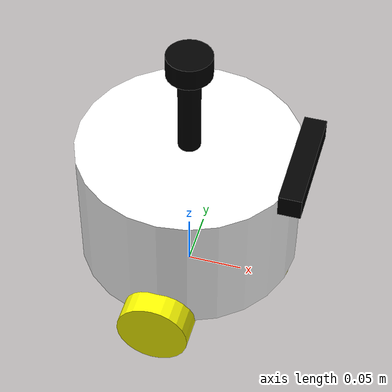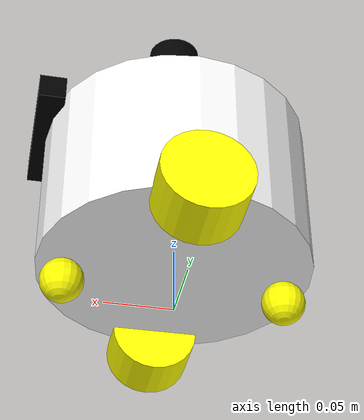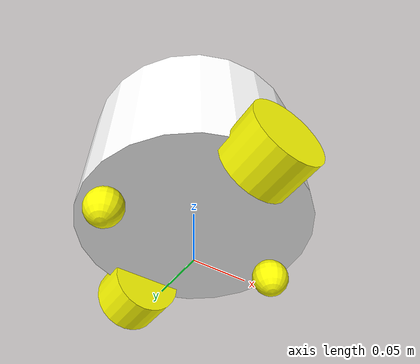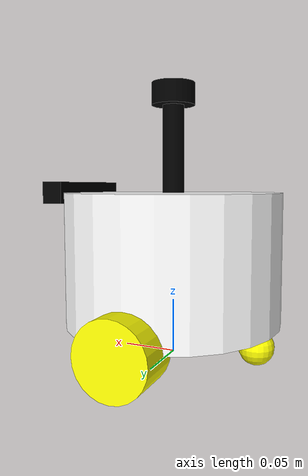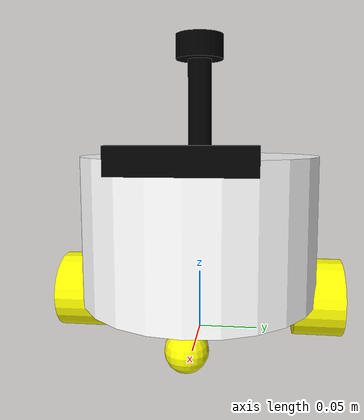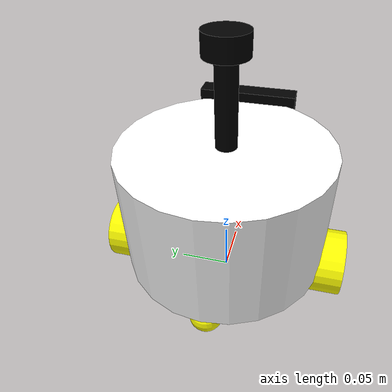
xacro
<?xml version="1.0"?>
<robot xmlns:xacro="http://www.ros.org/wiki/xacro" name="fishbot">
    <!-- 惯性矩阵计算公式 -->
    <xacro:include filename="$(find cpp8_urdf_plus)/urdf/fishbot/common_inertia.xacro"/>

    <!-- 基础部分 -->
    <xacro:include filename="$(find cpp8_urdf_plus)/urdf/fishbot/base.urdf.xacro"/>
    <!-- 传感器 -->
    <xacro:include filename="$(find cpp8_urdf_plus)/urdf/fishbot/sensor/camera.urdf.xacro"/>
    <xacro:include filename="$(find cpp8_urdf_plus)/urdf/fishbot/sensor/imu.urdf.xacro"/>
    <xacro:include filename="$(find cpp8_urdf_plus)/urdf/fishbot/sensor/laser.urdf.xacro"/>
    <!--执行器 -->
    <xacro:include filename="$(find cpp8_urdf_plus)/urdf/fishbot/actuator/wheel.urdf.xacro"/>
    <xacro:include filename="$(find cpp8_urdf_plus)/urdf/fishbot/actuator/caster.urdf.xacro"/>

    <!-- Gazebo差速控制 关节状态 -->
    <xacro:include filename="$(find cpp8_urdf_plus)/urdf/fishbot/plugins/gazebo_control_plugin.xacro"/>
    <!-- 传感器 -->
    <xacro:include filename="$(find cpp8_urdf_plus)/urdf/fishbot/plugins/gazebo_sensor_plugin.xacro"/>

    <!-- 调用宏：生成差速驱动插件 + 关节状态发布插件 -->
    <xacro:gazebo_control_plugin/>
    <xacro:gazebo_joint_state_plugin/>

    <xacro:base_xacro length="0.12" radius="0.10"/>
    <xacro:imu_xacro xyz = "0.0 0.0 0.02"/>
    <xacro:camera_xacro xyz = "0.10 0.0 0.06"/>
    <xacro:laser_xacro xyz = "0.0 0.0 0.10"/>

    <xacro:wheel_xacro wheel_name = "left_wheel" xyz = "0 0.10 -0.06"/>
    <xacro:wheel_xacro wheel_name = "right_wheel" xyz = "0 -0.10 -0.06"/>

    <xacro:caster_xacro caster_name = "front_caster" xyz = "0.08 0.0 -0.076"/>
    <xacro:caster_xacro caster_name = "back_caster" xyz = "-0.08 0.0 -0.076"/>
</robot>

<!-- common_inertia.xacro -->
<robot xmlns:xacro="http://ros.org/wiki/xacro">

    <!-- 1. 长方体惯性宏-->
    <!-- m:质量(kg)  w:x轴尺寸(m)  h:y轴尺寸(m)  d:z轴尺寸(m) -->
    <xacro:macro name="box_inertia" params="m w h d">
        <inertial>
            <mass value="${m}" />
            <!--      绕X轴转动: 取决于 y 和 z 方向的尺寸       -->
            <!--      绕Y轴转动: 取决于 x 和 z 方向的尺寸       -->
            <!--      绕Z轴转动: 取决于 x 和 y 方向的尺寸       -->
            <inertia ixx="${(m/12) * (h*h + d*d)}" ixy="0.0" ixz="0.0"
                     iyy="${(m/12) * (w*w + d*d)}" iyz="0.0"
                     izz="${(m/12) * (w*w + h*h)}" />
        </inertial>
    </xacro:macro>

    <!-- 2. 圆柱体惯性宏 -->
    <!-- m:质量(kg)  r:半径(m)  h:高度/长度(m) -->
    <xacro:macro name="cylinder_inertia" params="m r h">
        <inertial>
            <mass value="${m}" />
            <!--      绕X轴和Y轴(侧翻): 与半径和高度都有关       -->
            <!--      绕Z轴(自转): 只与半径有关 (高度不影响自转) -->
            <inertia ixx="${(m/12) * (3*r*r + h*h)}" ixy="0" ixz="0"
                     iyy="${(m/12) * (3*r*r + h*h)}" iyz="0"
                     izz="${(m/2) * (r*r)}" />
        </inertial>
    </xacro:macro>

    <!-- 3. 球体惯性宏 -->
    <!-- m:质量(kg)  r:半径(m) -->
    <xacro:macro name="sphere_inertia" params="m r">
        <inertial>
            <mass value="${m}" />
            <!--      球体完全对称: 绕X/Y/Z轴转动惯量完全一样      -->
            <inertia ixx="${(2/5) * m * (r*r)}" ixy="0.0" ixz="0.0"
                     iyy="${(2/5) * m * (r*r)}" iyz="0.0"
                     izz="${(2/5) * m * (r*r)}" />
        </inertial>
    </xacro:macro>

</robot>

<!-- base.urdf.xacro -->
<robot xmlns:xacro="http://www.ros.org/wiki/xacro" name="first_robot">

    <!-- 机器人身体 -->
    <xacro:macro name = "base_xacro" params="length radius">
        <link name="base_footprint"/>

        <link name="base_link">
            <!-- 部件外观描述 -->
            <visual>
                <!-- 偏移 偏移量 -->
                <origin xyz="0.0 0.0 0.0" rpy="0.0 0.0 0.0"/>
                <!-- 几何形状 -->
                <geometry>
                    <!-- 圆柱体 半径 高度 m -->
                    <cylinder radius="${radius}" length="${length}"/>
                </geometry>
                <!-- 材质颜色 -->
                <material name = "white">
                    <color rgba="1.0 1.0 1.0 1.0"/>
                </material>
            </visual>
            <!-- 碰撞属性 -->
            <collision>
                <!-- 偏移 偏移量 -->
                <origin xyz="0.0 0.0 0.0" rpy="0.0 0.0 0.0"/>
                <!-- 几何形状 -->
                <geometry>
                    <!-- 圆柱体 半径 高度 m -->
                    <cylinder radius="${radius}" length="${length}"/>
                </geometry>
                <!-- 材质颜色 -->
                <material name = "white">
                    <color rgba="1.0 1.0 1.0 1.0"/>
                </material>
            </collision>
            <!-- 质量惯性 -->、
            <xacro:cylinder_inertia m = "1.0" r = "${radius}" h = "${length}"/>
        </link>

        <joint name="joint_name" type="fixed">
            <origin xyz="0.0 0.0 ${length/2.0 + 0.032 - 0.001}" rpy="0.0 0.0 0.0"/>
            <parent link="base_footprint"/>
            <child link="base_link"/>
        </joint>
    </xacro:macro>
</robot>

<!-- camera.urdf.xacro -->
<robot xmlns:xacro="http://www.ros.org/wiki/xacro" name="first_robot">
    <!-- 机器人的camera部件 惯性测量传感器 -->
    <xacro:macro name="camera_xacro" params= "xyz">
        <link name="camera_link">
            <!-- 部件外观描述 -->
            <visual>
                <!-- 偏移 偏移量 -->
                <origin xyz="0.0 0.0 0.0" rpy="0.0 0.0 0.0"/>
                <!-- 几何形状 -->
                <geometry>
                    <!-- 正方体 -->
                    <box size="0.02 0.10 0.02"/>
                </geometry>
                <!-- 材质颜色 -->
                <material name = "black">
                    <color rgba="0.0 0.0 0.0 1.0"/>
                </material>
            </visual>
            <!-- 碰撞属性 -->
            <collision>
                <!-- 偏移 偏移量 -->
                <origin xyz="0.0 0.0 0.0" rpy="0.0 0.0 0.0"/>
                <!-- 几何形状 -->
                <geometry>
                    <!-- 正方体 -->
                    <box size="0.02 0.10 0.02"/>
                </geometry>
                <!-- 材质颜色 -->
                <material name = "black">
                    <color rgba="0.0 0.0 0.0 1.0"/>
                </material>
            </collision>
            <!-- 质量惯性 -->
            <xacro:box_inertia m = "0.1" w = "0.02" h = "0.10" d = "0.02"/>
        </link>
        <!-- 相机修正 -->
        <link name ="camera_optical_link">

        </link>
        <!-- 机器人关节  -->
        <joint name="camera_joint" type="fixed">
            <origin xyz="${xyz}" rpy="0.0 0.0 0.0"/>
            <parent link="base_link"/>
            <child link="camera_link"/>
        </joint>

        <joint name="camera_optical_joint" type="fixed">
            <origin xyz="0 0 0" rpy="${-pi/2} 0.0 ${-pi/2}"/>
            <parent link="camera_link"/>
            <child link="camera_optical_link"/>
        </joint>
    </xacro:macro>
</robot>

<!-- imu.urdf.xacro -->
<robot xmlns:xacro="http://www.ros.org/wiki/xacro" name="first_robot">
    <!-- 机器人的IMU部件 惯性测量传感器 -->
    <xacro:macro name="imu_xacro" params= "xyz">
        <link name="imu_link">
            <!-- 部件外观描述 -->
            <visual>
                <!-- 偏移 偏移量 -->
                <origin xyz="0.0 0.0 0.0" rpy="0.0 0.0 0.0"/>
                <!-- 几何形状 -->
                <geometry>
                    <!-- 正方体 -->
                    <box size="0.02 0.02 0.02"/>
                </geometry>
                <!-- 材质颜色 -->
                <material name = "black">
                    <color rgba="0.0 0.0 0.0 1.0"/>
                </material>
            </visual>
            <!-- 碰撞属性 -->
            <collision>
                <!-- 偏移 偏移量 -->
                <origin xyz="0.0 0.0 0.0" rpy="0.0 0.0 0.0"/>
                <!-- 几何形状 -->
                <geometry>
                    <!-- 正方体 -->
                    <box size="0.02 0.02 0.02"/>
                </geometry>
                <!-- 材质颜色 -->
                <material name = "black">
                    <color rgba="0.0 0.0 0.0 1.0"/>
                </material>
            </collision>
            <!-- 质量惯性 -->、
            <xacro:box_inertia m = "0.05" w = "0.02" h = "0.02" d = "0.02"/>
        </link>
        <!-- 机器人关节  -->
        <joint name="imu_joint" type="fixed">
            <origin xyz="${xyz}" rpy="0.0 0.0 0.0"/>
            <parent link="base_link"/>
            <child link="imu_link"/>
        </joint>
    </xacro:macro>
</robot>

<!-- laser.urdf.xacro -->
<robot xmlns:xacro="http://www.ros.org/wiki/xacro" name="first_robot">
    <xacro:macro name="laser_xacro" params= "xyz">
        <!-- 雷达支撑杆  -->
        <link name="laser_cylinder_link">
            <!-- 部件外观描述 -->
            <visual>
                <!-- 偏移 偏移量 -->
                <origin xyz="0.0 0.0 0.0" rpy="0.0 0.0 0.0"/>
                <!-- 几何形状 -->
                    <geometry>
                        <!-- 圆柱 -->
                        <cylinder radius="0.01" length="0.10"/>
                    </geometry>
                <!-- 材质颜色 -->
                <material name = "black">
                    <color rgba="0.0 0.0 0.0 1.0"/>
                </material>
            </visual>
            <!-- 碰撞属性 -->
            <collision>
                <!-- 偏移 偏移量 -->
                <origin xyz="0.0 0.0 0.0" rpy="0.0 0.0 0.0"/>
                <!-- 几何形状 -->
                    <geometry>
                        <!-- 圆柱 -->
                        <cylinder radius="0.01" length="0.10"/>
                    </geometry>
                <!-- 材质颜色 -->
                <material name = "black">
                    <color rgba="0.0 0.0 0.0 1.0"/>
                </material>
            </collision>
            <!-- 质量惯性 -->
            <xacro:cylinder_inertia m = "0.05" r = "0.01" h = "0.10"/>
        </link>

        <!-- 雷达  -->
        <link name="laser_link">
            <!-- 部件外观描述 -->
            <visual>
                <!-- 偏移 偏移量 -->
                <origin xyz="0.0 0.0 0.0" rpy="0.0 0.0 0.0"/>
                <!-- 几何形状 -->
                <geometry>
                    <!-- 圆柱 -->
                    <cylinder radius="0.02" length="0.02"/>
                </geometry>
                <!-- 材质颜色 -->
                <material name = "black">
                    <color rgba="0.0 0.0 0.0 1.0"/>
                </material>
            </visual>
            <!-- 碰撞属性 -->
            <collision>
                <!-- 偏移 偏移量 -->
                <origin xyz="0.0 0.0 0.0" rpy="0.0 0.0 0.0"/>
                <!-- 几何形状 -->
                <geometry>
                    <!-- 圆柱 -->
                    <cylinder radius="0.02" length="0.02"/>
                </geometry>
                <!-- 材质颜色 -->
                <material name = "black">
                    <color rgba="0.0 0.0 0.0 1.0"/>
                </material>
            </collision>
            <!-- 质量惯性 -->
            <xacro:cylinder_inertia m = "0.10" r = "0.02" h = "0.02"/>
        </link>

        <!-- 机器人关节  -->
        <joint name="laser_joint" type="fixed">
            <origin xyz="0.0 0.0 0.05" rpy="0.0 0.0 0.0"/>
            <parent link="laser_cylinder_link"/>
            <child link="laser_link"/>
        </joint>

        <joint name="laser_cylinder_joint" type="fixed">
            <origin xyz="${xyz}" rpy="0.0 0.0 0.0"/>
            <parent link="base_link"/>
            <child link="laser_cylinder_link"/>
        </joint>
        <gazebo reference="laser_cylinder_link">
            <material>Gazebo/Black</material>
        </gazebo>
        <gazebo reference="laser_link">
            <material>Gazebo/Black</material>
        </gazebo>
    </xacro:macro>
</robot>

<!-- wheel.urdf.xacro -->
<robot xmlns:xacro="http://www.ros.org/wiki/xacro" name="first_robot">
    <!-- 轮胎 -->
    <xacro:macro name="wheel_xacro" params= "wheel_name xyz">
        <link name="${wheel_name}_link">
            <!-- 部件外观描述 -->
            <visual>
                <!-- 偏移 偏移量 -->
                <origin xyz="0.0 0.0 0.0" rpy="1.57079 0.0 0.0"/>
                <!-- 几何形状 -->
                <geometry>
                    <cylinder radius="0.032" length="0.04"/>
                </geometry>
                <!-- 材质颜色 -->
                <material name = "yellow">
                    <color rgba="1.0 1.0 0.0 1.0"/>
                </material>
            </visual>
            <!-- 碰撞属性 -->
            <collision>
                <!-- 偏移 偏移量 -->
                <origin xyz="0.0 0.0 0.0" rpy="1.57079 0.0 0.0"/>
                <!-- 几何形状 -->
                <geometry>
                    <cylinder radius="0.032" length="0.04"/>
                </geometry>
                <!-- 材质颜色 -->
                <material name = "yellow">
                    <color rgba="1.0 1.0 0.0 1.0"/>
                </material>
            </collision>
            <!-- 质量惯性 -->
            <xacro:cylinder_inertia m = "0.05" r = "0.032" h = "0.04"/>
        </link>
        <!-- 机器人关节  -->
        <joint name="${wheel_name}_joint" type="continuous">
            <origin xyz="${xyz}" rpy="0.0 0.0 0.0"/>
            <parent link="base_link"/>
            <child link="${wheel_name}_link"/>
            <axis xyz="0.0 1.0 0.0"/>
            <!-- 新版扭矩移植 -->
            <limit  effort="20" velocity="10"/>
        </joint>
        <!-- 摩擦系数设计 -->
        <gazebo reference="${wheel_name}_link">
            <mu1 value="20.0"/>
            <mu2 value="20.0"/>
            <kp value="1000000000.0"/>
            <kd value="1.0"/>
        </gazebo>
    </xacro:macro>
</robot>

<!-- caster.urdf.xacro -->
<robot xmlns:xacro="http://www.ros.org/wiki/xacro" name="first_robot">
    <!-- 万向轮 -->
    <xacro:macro name="caster_xacro" params= "caster_name xyz">
        <link name="${caster_name}_link">
            <!-- 部件外观描述 -->
            <visual>
                <!-- 偏移 偏移量 -->
                <origin xyz="0.0 0.0 0.0" rpy="0.0 0.0 0.0"/>
                <!-- 几何形状 -->
                <geometry>
                    <sphere radius="0.016"/>
                </geometry>
                <!-- 材质颜色 -->
                <material name = "yellow">
                    <color rgba="1.0 1.0 0.0 1.0"/>
                </material>
            </visual>
            <!-- 碰撞属性 -->
            <collision>
                <!-- 偏移 偏移量 -->
                <origin xyz="0.0 0.0 0.0" rpy="0.0 0.0 0.0"/>
                <!-- 几何形状 -->
                <geometry>
                    <sphere radius="0.016"/>
                </geometry>
                <!-- 材质颜色 -->
                <material name = "yellow">
                    <color rgba="1.0 1.0 0.0 1.0"/>
                </material>
            </collision>
            <!-- 质量惯性 -->、
            <xacro:sphere_inertia m = "0.05" r = "0.016"/>
        </link>
        <!-- 机器人关节  -->
        <joint name="${caster_name}_joint" type="fixed">
            <origin xyz="${xyz}" rpy="0.0 0.0 0.0"/>
            <parent link="base_link"/>
            <child link="${caster_name}_link"/>
        </joint>
        <!-- 摩擦系数设计 -->
        <gazebo reference="${caster_name}_link">
            <mu1 value="0.0"/>
            <mu2 value="0.0"/>
            <kp value="1000000000.0"/>
            <kd value="1.0"/>
        </gazebo>
    </xacro:macro>
</robot>
